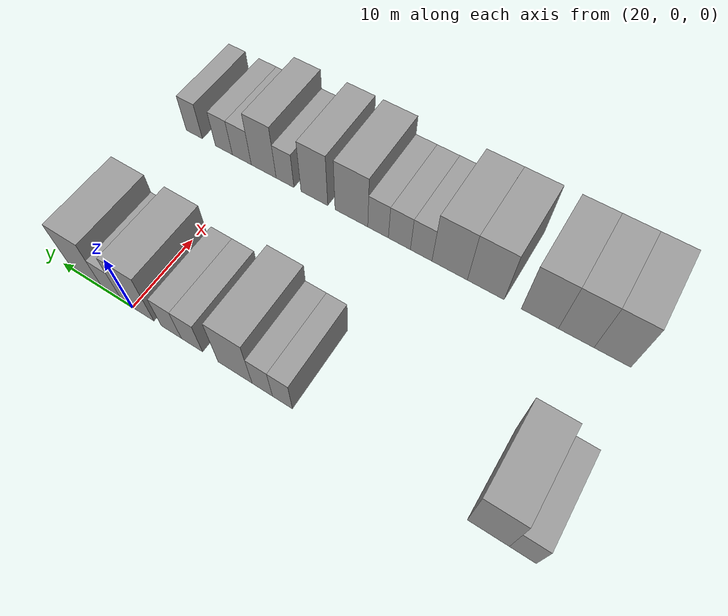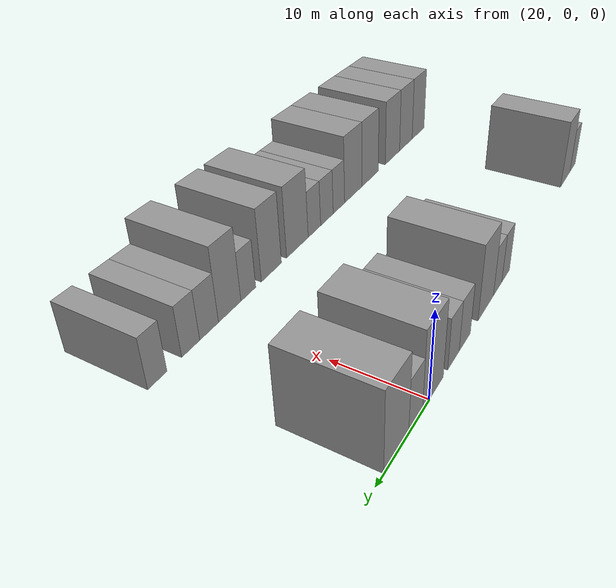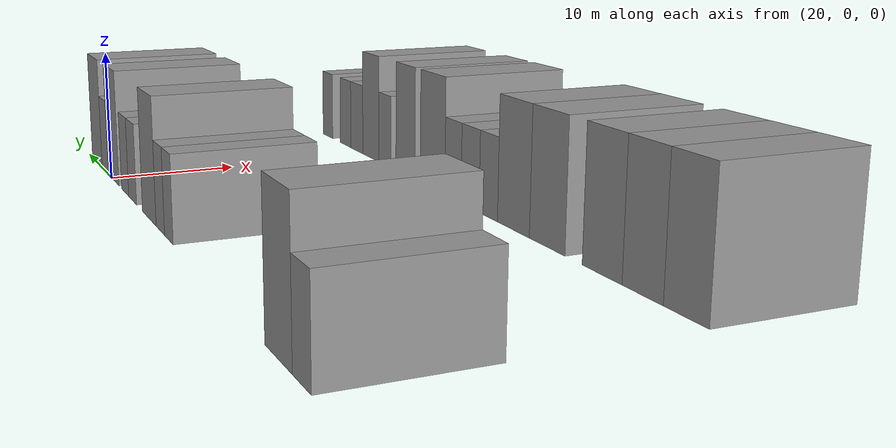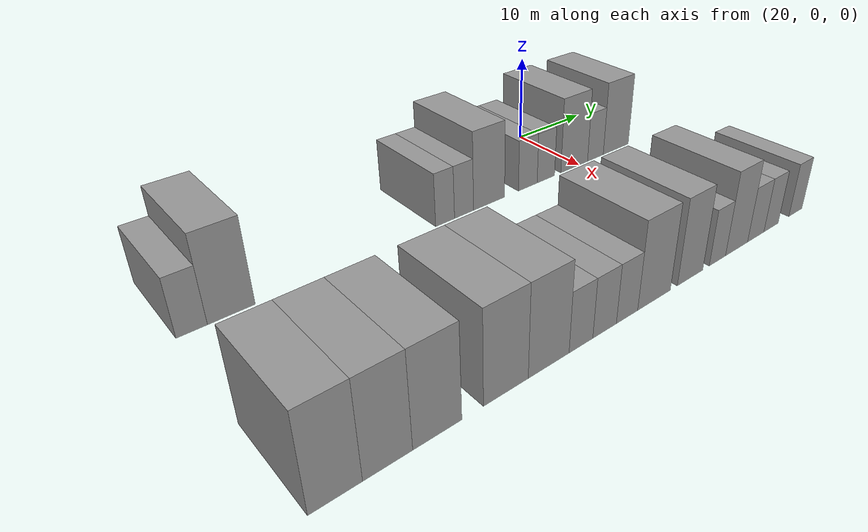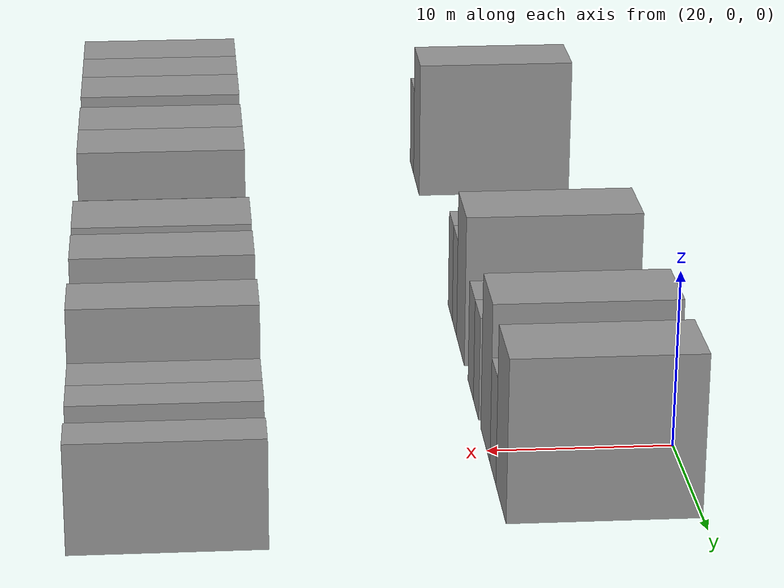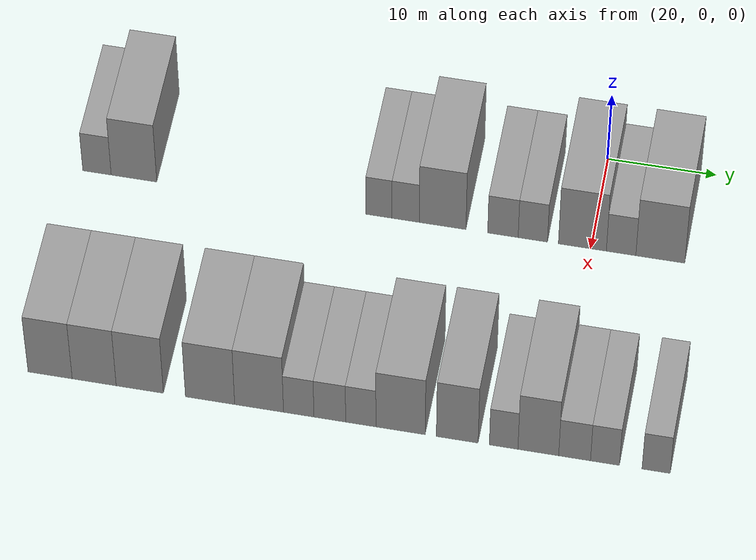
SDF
<sdf version="1.6">
 <world name="default">
  <model name="building_37">
   <static>1</static>
   <pose>25.0000 -45.6284 0 0.000000 0.000000 0.000000</pose>
   <link name="link">
    <pose>0 0 3.00 0 0 0</pose>
    <collision name="collision"><geometry><box><size>10.0000 2.6455 6.0000</size></box></geometry></collision>
    <visual name="visual">
     <cast_shadows>0</cast_shadows>
     <geometry><box><size>10.0000 2.6455 6.0000</size></box></geometry>
     <material>
      <script>
       <uri>model://grey_wall/materials/scripts</uri>
       <uri>model://grey_wall/materials/textures</uri>
       <name>vrc/grey_wall</name>
      </script>
     </material>
    </visual>
   </link>
  </model>
  <model name="building_38">
   <static>1</static>
   <pose>25.0000 -42.1798 0 0.000000 0.000000 0.000000</pose>
   <link name="link">
    <pose>0 0 4.50 0 0 0</pose>
    <collision name="collision"><geometry><box><size>10.0000 4.2517 9.0000</size></box></geometry></collision>
    <visual name="visual">
     <cast_shadows>0</cast_shadows>
     <geometry><box><size>10.0000 4.2517 9.0000</size></box></geometry>
     <material>
      <script>
       <uri>model://grey_wall/materials/scripts</uri>
       <uri>model://grey_wall/materials/textures</uri>
       <name>vrc/grey_wall</name>
      </script>
     </material>
    </visual>
   </link>
  </model>
  <model name="building_39">
   <static>1</static>
   <pose>25.0000 -19.4496 0 0.000000 0.000000 0.000000</pose>
   <link name="link">
    <pose>0 0 3.00 0 0 0</pose>
    <collision name="collision"><geometry><box><size>10.0000 2.4029 6.0000</size></box></geometry></collision>
    <visual name="visual">
     <cast_shadows>0</cast_shadows>
     <geometry><box><size>10.0000 2.4029 6.0000</size></box></geometry>
     <material>
      <script>
       <uri>model://grey_wall/materials/scripts</uri>
       <uri>model://grey_wall/materials/textures</uri>
       <name>vrc/grey_wall</name>
      </script>
     </material>
    </visual>
   </link>
  </model>
  <model name="building_40">
   <static>1</static>
   <pose>25.0000 -16.9956 0 0.000000 0.000000 0.000000</pose>
   <link name="link">
    <pose>0 0 3.00 0 0 0</pose>
    <collision name="collision"><geometry><box><size>10.0000 2.5051 6.0000</size></box></geometry></collision>
    <visual name="visual">
     <cast_shadows>0</cast_shadows>
     <geometry><box><size>10.0000 2.5051 6.0000</size></box></geometry>
     <material>
      <script>
       <uri>model://grey_wall/materials/scripts</uri>
       <uri>model://grey_wall/materials/textures</uri>
       <name>vrc/grey_wall</name>
      </script>
     </material>
    </visual>
   </link>
  </model>
  <model name="building_41">
   <static>1</static>
   <pose>25.0000 -13.5917 0 0.000000 0.000000 0.000000</pose>
   <link name="link">
    <pose>0 0 4.50 0 0 0</pose>
    <collision name="collision"><geometry><box><size>10.0000 4.3028 9.0000</size></box></geometry></collision>
    <visual name="visual">
     <cast_shadows>0</cast_shadows>
     <geometry><box><size>10.0000 4.3028 9.0000</size></box></geometry>
     <material>
      <script>
       <uri>model://grey_wall/materials/scripts</uri>
       <uri>model://grey_wall/materials/textures</uri>
       <name>vrc/grey_wall</name>
      </script>
     </material>
    </visual>
   </link>
  </model>
  <model name="building_42">
   <static>1</static>
   <pose>25.0000 -8.0424 0 0.000000 0.000000 0.000000</pose>
   <link name="link">
    <pose>0 0 3.00 0 0 0</pose>
    <collision name="collision"><geometry><box><size>10.0000 2.7958 6.0000</size></box></geometry></collision>
    <visual name="visual">
     <cast_shadows>0</cast_shadows>
     <geometry><box><size>10.0000 2.7958 6.0000</size></box></geometry>
     <material>
      <script>
       <uri>model://grey_wall/materials/scripts</uri>
       <uri>model://grey_wall/materials/textures</uri>
       <name>vrc/grey_wall</name>
      </script>
     </material>
    </visual>
   </link>
  </model>
  <model name="building_43">
   <static>1</static>
   <pose>25.0000 -5.2995 0 0.000000 0.000000 0.000000</pose>
   <link name="link">
    <pose>0 0 3.00 0 0 0</pose>
    <collision name="collision"><geometry><box><size>10.0000 2.6900 6.0000</size></box></geometry></collision>
    <visual name="visual">
     <cast_shadows>0</cast_shadows>
     <geometry><box><size>10.0000 2.6900 6.0000</size></box></geometry>
     <material>
      <script>
       <uri>model://grey_wall/materials/scripts</uri>
       <uri>model://grey_wall/materials/textures</uri>
       <name>vrc/grey_wall</name>
      </script>
     </material>
    </visual>
   </link>
  </model>
  <model name="building_44">
   <static>1</static>
   <pose>25.0000 -0.7623 0 0.000000 0.000000 0.000000</pose>
   <link name="link">
    <pose>0 0 4.50 0 0 0</pose>
    <collision name="collision"><geometry><box><size>10.0000 4.3845 9.0000</size></box></geometry></collision>
    <visual name="visual">
     <cast_shadows>0</cast_shadows>
     <geometry><box><size>10.0000 4.3845 9.0000</size></box></geometry>
     <material>
      <script>
       <uri>model://grey_wall/materials/scripts</uri>
       <uri>model://grey_wall/materials/textures</uri>
       <name>vrc/grey_wall</name>
      </script>
     </material>
    </visual>
   </link>
  </model>
  <model name="building_45">
   <static>1</static>
   <pose>25.0000 2.7781 0 0.000000 0.000000 0.000000</pose>
   <link name="link">
    <pose>0 0 3.00 0 0 0</pose>
    <collision name="collision"><geometry><box><size>10.0000 2.6963 6.0000</size></box></geometry></collision>
    <visual name="visual">
     <cast_shadows>0</cast_shadows>
     <geometry><box><size>10.0000 2.6963 6.0000</size></box></geometry>
     <material>
      <script>
       <uri>model://grey_wall/materials/scripts</uri>
       <uri>model://grey_wall/materials/textures</uri>
       <name>vrc/grey_wall</name>
      </script>
     </material>
    </visual>
   </link>
  </model>
  <model name="building_46">
   <static>1</static>
   <pose>25.0000 6.3581 0 0.000000 0.000000 0.000000</pose>
   <link name="link">
    <pose>0 0 4.50 0 0 0</pose>
    <collision name="collision"><geometry><box><size>10.0000 4.4637 9.0000</size></box></geometry></collision>
    <visual name="visual">
     <cast_shadows>0</cast_shadows>
     <geometry><box><size>10.0000 4.4637 9.0000</size></box></geometry>
     <material>
      <script>
       <uri>model://grey_wall/materials/scripts</uri>
       <uri>model://grey_wall/materials/textures</uri>
       <name>vrc/grey_wall</name>
      </script>
     </material>
    </visual>
   </link>
  </model>
  <model name="building_137">
   <static>1</static>
   <pose>47.0000 -45.0564 0 0.000000 0.000000 0.000000</pose>
   <link name="link">
    <pose>0 0 4.50 0 0 0</pose>
    <collision name="collision"><geometry><box><size>10.0000 4.0104 9.0000</size></box></geometry></collision>
    <visual name="visual">
     <cast_shadows>0</cast_shadows>
     <geometry><box><size>10.0000 4.0104 9.0000</size></box></geometry>
     <material>
      <script>
       <uri>model://grey_wall/materials/scripts</uri>
       <uri>model://grey_wall/materials/textures</uri>
       <name>vrc/grey_wall</name>
      </script>
     </material>
    </visual>
   </link>
  </model>
  <model name="building_138">
   <static>1</static>
   <pose>47.0000 -41.0551 0 0.000000 0.000000 0.000000</pose>
   <link name="link">
    <pose>0 0 4.50 0 0 0</pose>
    <collision name="collision"><geometry><box><size>10.0000 3.9922 9.0000</size></box></geometry></collision>
    <visual name="visual">
     <cast_shadows>0</cast_shadows>
     <geometry><box><size>10.0000 3.9922 9.0000</size></box></geometry>
     <material>
      <script>
       <uri>model://grey_wall/materials/scripts</uri>
       <uri>model://grey_wall/materials/textures</uri>
       <name>vrc/grey_wall</name>
      </script>
     </material>
    </visual>
   </link>
  </model>
  <model name="building_139">
   <static>1</static>
   <pose>47.0000 -36.9221 0 0.000000 0.000000 0.000000</pose>
   <link name="link">
    <pose>0 0 4.50 0 0 0</pose>
    <collision name="collision"><geometry><box><size>10.0000 4.2738 9.0000</size></box></geometry></collision>
    <visual name="visual">
     <cast_shadows>0</cast_shadows>
     <geometry><box><size>10.0000 4.2738 9.0000</size></box></geometry>
     <material>
      <script>
       <uri>model://grey_wall/materials/scripts</uri>
       <uri>model://grey_wall/materials/textures</uri>
       <name>vrc/grey_wall</name>
      </script>
     </material>
    </visual>
   </link>
  </model>
  <model name="building_140">
   <static>1</static>
   <pose>47.0000 -30.5642 0 0.000000 0.000000 0.000000</pose>
   <link name="link">
    <pose>0 0 4.50 0 0 0</pose>
    <collision name="collision"><geometry><box><size>10.0000 4.4421 9.0000</size></box></geometry></collision>
    <visual name="visual">
     <cast_shadows>0</cast_shadows>
     <geometry><box><size>10.0000 4.4421 9.0000</size></box></geometry>
     <material>
      <script>
       <uri>model://grey_wall/materials/scripts</uri>
       <uri>model://grey_wall/materials/textures</uri>
       <name>vrc/grey_wall</name>
      </script>
     </material>
    </visual>
   </link>
  </model>
  <model name="building_141">
   <static>1</static>
   <pose>47.0000 -26.1441 0 0.000000 0.000000 0.000000</pose>
   <link name="link">
    <pose>0 0 4.50 0 0 0</pose>
    <collision name="collision"><geometry><box><size>10.0000 4.3980 9.0000</size></box></geometry></collision>
    <visual name="visual">
     <cast_shadows>0</cast_shadows>
     <geometry><box><size>10.0000 4.3980 9.0000</size></box></geometry>
     <material>
      <script>
       <uri>model://grey_wall/materials/scripts</uri>
       <uri>model://grey_wall/materials/textures</uri>
       <name>vrc/grey_wall</name>
      </script>
     </material>
    </visual>
   </link>
  </model>
  <model name="building_142">
   <static>1</static>
   <pose>47.0000 -22.5758 0 0.000000 0.000000 0.000000</pose>
   <link name="link">
    <pose>0 0 3.00 0 0 0</pose>
    <collision name="collision"><geometry><box><size>10.0000 2.7385 6.0000</size></box></geometry></collision>
    <visual name="visual">
     <cast_shadows>0</cast_shadows>
     <geometry><box><size>10.0000 2.7385 6.0000</size></box></geometry>
     <material>
      <script>
       <uri>model://grey_wall/materials/scripts</uri>
       <uri>model://grey_wall/materials/textures</uri>
       <name>vrc/grey_wall</name>
      </script>
     </material>
    </visual>
   </link>
  </model>
  <model name="building_143">
   <static>1</static>
   <pose>47.0000 -19.7795 0 0.000000 0.000000 0.000000</pose>
   <link name="link">
    <pose>0 0 3.00 0 0 0</pose>
    <collision name="collision"><geometry><box><size>10.0000 2.8541 6.0000</size></box></geometry></collision>
    <visual name="visual">
     <cast_shadows>0</cast_shadows>
     <geometry><box><size>10.0000 2.8541 6.0000</size></box></geometry>
     <material>
      <script>
       <uri>model://grey_wall/materials/scripts</uri>
       <uri>model://grey_wall/materials/textures</uri>
       <name>vrc/grey_wall</name>
      </script>
     </material>
    </visual>
   </link>
  </model>
  <model name="building_144">
   <static>1</static>
   <pose>47.0000 -16.9959 0 0.000000 0.000000 0.000000</pose>
   <link name="link">
    <pose>0 0 3.00 0 0 0</pose>
    <collision name="collision"><geometry><box><size>10.0000 2.7132 6.0000</size></box></geometry></collision>
    <visual name="visual">
     <cast_shadows>0</cast_shadows>
     <geometry><box><size>10.0000 2.7132 6.0000</size></box></geometry>
     <material>
      <script>
       <uri>model://grey_wall/materials/scripts</uri>
       <uri>model://grey_wall/materials/textures</uri>
       <name>vrc/grey_wall</name>
      </script>
     </material>
    </visual>
   </link>
  </model>
  <model name="building_145">
   <static>1</static>
   <pose>47.0000 -13.4322 0 0.000000 0.000000 0.000000</pose>
   <link name="link">
    <pose>0 0 4.50 0 0 0</pose>
    <collision name="collision"><geometry><box><size>10.0000 4.4141 9.0000</size></box></geometry></collision>
    <visual name="visual">
     <cast_shadows>0</cast_shadows>
     <geometry><box><size>10.0000 4.4141 9.0000</size></box></geometry>
     <material>
      <script>
       <uri>model://grey_wall/materials/scripts</uri>
       <uri>model://grey_wall/materials/textures</uri>
       <name>vrc/grey_wall</name>
      </script>
     </material>
    </visual>
   </link>
  </model>
  <model name="building_146">
   <static>1</static>
   <pose>47.0000 -8.3587 0 0.000000 0.000000 0.000000</pose>
   <link name="link">
    <pose>0 0 4.50 0 0 0</pose>
    <collision name="collision"><geometry><box><size>10.0000 3.7330 9.0000</size></box></geometry></collision>
    <visual name="visual">
     <cast_shadows>0</cast_shadows>
     <geometry><box><size>10.0000 3.7330 9.0000</size></box></geometry>
     <material>
      <script>
       <uri>model://grey_wall/materials/scripts</uri>
       <uri>model://grey_wall/materials/textures</uri>
       <name>vrc/grey_wall</name>
      </script>
     </material>
    </visual>
   </link>
  </model>
  <model name="building_147">
   <static>1</static>
   <pose>47.0000 -4.2167 0 0.000000 0.000000 0.000000</pose>
   <link name="link">
    <pose>0 0 3.00 0 0 0</pose>
    <collision name="collision"><geometry><box><size>10.0000 2.5510 6.0000</size></box></geometry></collision>
    <visual name="visual">
     <cast_shadows>0</cast_shadows>
     <geometry><box><size>10.0000 2.5510 6.0000</size></box></geometry>
     <material>
      <script>
       <uri>model://grey_wall/materials/scripts</uri>
       <uri>model://grey_wall/materials/textures</uri>
       <name>vrc/grey_wall</name>
      </script>
     </material>
    </visual>
   </link>
  </model>
  <model name="building_148">
   <static>1</static>
   <pose>47.0000 -1.1264 0 0.000000 0.000000 0.000000</pose>
   <link name="link">
    <pose>0 0 4.50 0 0 0</pose>
    <collision name="collision"><geometry><box><size>10.0000 3.6296 9.0000</size></box></geometry></collision>
    <visual name="visual">
     <cast_shadows>0</cast_shadows>
     <geometry><box><size>10.0000 3.6296 9.0000</size></box></geometry>
     <material>
      <script>
       <uri>model://grey_wall/materials/scripts</uri>
       <uri>model://grey_wall/materials/textures</uri>
       <name>vrc/grey_wall</name>
      </script>
     </material>
    </visual>
   </link>
  </model>
  <model name="building_149">
   <static>1</static>
   <pose>47.0000 2.1041 0 0.000000 0.000000 0.000000</pose>
   <link name="link">
    <pose>0 0 3.00 0 0 0</pose>
    <collision name="collision"><geometry><box><size>10.0000 2.8314 6.0000</size></box></geometry></collision>
    <visual name="visual">
     <cast_shadows>0</cast_shadows>
     <geometry><box><size>10.0000 2.8314 6.0000</size></box></geometry>
     <material>
      <script>
       <uri>model://grey_wall/materials/scripts</uri>
       <uri>model://grey_wall/materials/textures</uri>
       <name>vrc/grey_wall</name>
      </script>
     </material>
    </visual>
   </link>
  </model>
  <model name="building_150">
   <static>1</static>
   <pose>47.0000 4.8058 0 0.000000 0.000000 0.000000</pose>
   <link name="link">
    <pose>0 0 3.00 0 0 0</pose>
    <collision name="collision"><geometry><box><size>10.0000 2.5720 6.0000</size></box></geometry></collision>
    <visual name="visual">
     <cast_shadows>0</cast_shadows>
     <geometry><box><size>10.0000 2.5720 6.0000</size></box></geometry>
     <material>
      <script>
       <uri>model://grey_wall/materials/scripts</uri>
       <uri>model://grey_wall/materials/textures</uri>
       <name>vrc/grey_wall</name>
      </script>
     </material>
    </visual>
   </link>
  </model>
  <model name="building_151">
   <static>1</static>
   <pose>47.0000 9.3434 0 0.000000 0.000000 0.000000</pose>
   <link name="link">
    <pose>0 0 3.00 0 0 0</pose>
    <collision name="collision"><geometry><box><size>10.0000 2.5032 6.0000</size></box></geometry></collision>
    <visual name="visual">
     <cast_shadows>0</cast_shadows>
     <geometry><box><size>10.0000 2.5032 6.0000</size></box></geometry>
     <material>
      <script>
       <uri>model://grey_wall/materials/scripts</uri>
       <uri>model://grey_wall/materials/textures</uri>
       <name>vrc/grey_wall</name>
      </script>
     </material>
    </visual>
   </link>
  </model>
 </world>
</sdf>
